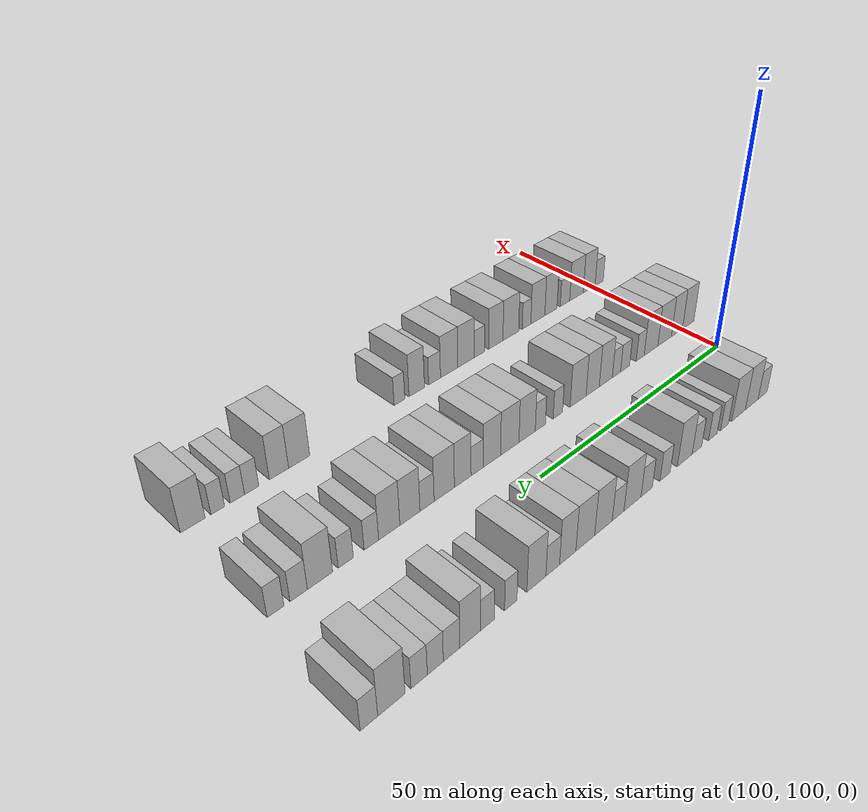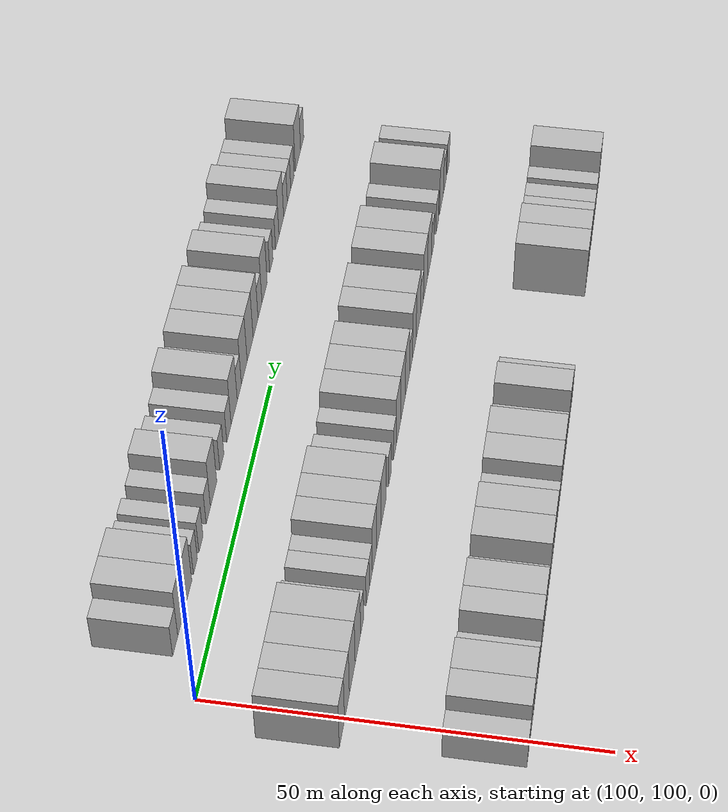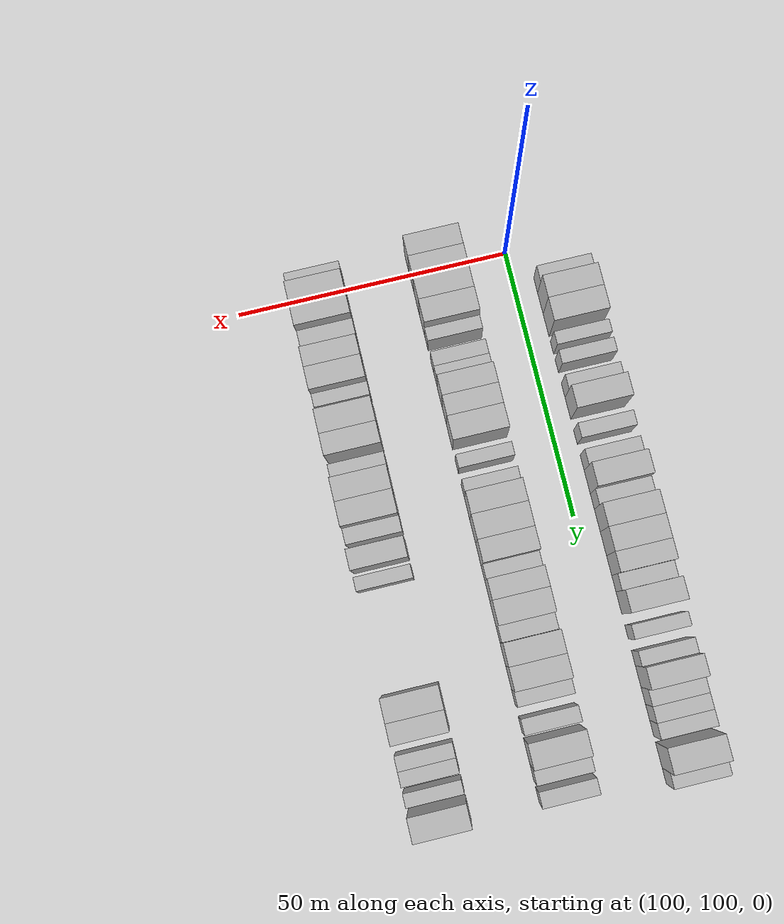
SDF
<sdf version="1.6">
 <world name="default">
  <model name="building_713">
   <static>1</static>
   <pose>91.0000 107.1444 0 0.000000 0.000000 0.000000</pose>
   <link name="link">
    <pose>0 0 3.00 0 0 0</pose>
    <collision name="collision"><geometry><box><size>10.0000 2.9722 6.0000</size></box></geometry></collision>
    <visual name="visual">
     <cast_shadows>0</cast_shadows>
     <geometry><box><size>10.0000 2.9722 6.0000</size></box></geometry>
     <material>
      <script>
       <uri>model://HANNAS_wall/materials/scripts</uri>
       <uri>model://HANNAS_wall/materials/textures</uri>
       <name>vrc/HANNAS_wall</name>
      </script>
     </material>
    </visual>
   </link>
  </model>
  <model name="building_714">
   <static>1</static>
   <pose>91.0000 110.6781 0 0.000000 0.000000 0.000000</pose>
   <link name="link">
    <pose>0 0 4.50 0 0 0</pose>
    <collision name="collision"><geometry><box><size>10.0000 4.0952 9.0000</size></box></geometry></collision>
    <visual name="visual">
     <cast_shadows>0</cast_shadows>
     <geometry><box><size>10.0000 4.0952 9.0000</size></box></geometry>
     <material>
      <script>
       <uri>model://HANNAS_wall/materials/scripts</uri>
       <uri>model://HANNAS_wall/materials/textures</uri>
       <name>vrc/HANNAS_wall</name>
      </script>
     </material>
    </visual>
   </link>
  </model>
  <model name="building_715">
   <static>1</static>
   <pose>91.0000 114.8753 0 0.000000 0.000000 0.000000</pose>
   <link name="link">
    <pose>0 0 4.50 0 0 0</pose>
    <collision name="collision"><geometry><box><size>10.0000 4.2992 9.0000</size></box></geometry></collision>
    <visual name="visual">
     <cast_shadows>0</cast_shadows>
     <geometry><box><size>10.0000 4.2992 9.0000</size></box></geometry>
     <material>
      <script>
       <uri>model://HANNAS_wall/materials/scripts</uri>
       <uri>model://HANNAS_wall/materials/textures</uri>
       <name>vrc/HANNAS_wall</name>
      </script>
     </material>
    </visual>
   </link>
  </model>
  <model name="building_716">
   <static>1</static>
   <pose>91.0000 119.2325 0 0.000000 0.000000 0.000000</pose>
   <link name="link">
    <pose>0 0 3.00 0 0 0</pose>
    <collision name="collision"><geometry><box><size>10.0000 2.4152 6.0000</size></box></geometry></collision>
    <visual name="visual">
     <cast_shadows>0</cast_shadows>
     <geometry><box><size>10.0000 2.4152 6.0000</size></box></geometry>
     <material>
      <script>
       <uri>model://HANNAS_wall/materials/scripts</uri>
       <uri>model://HANNAS_wall/materials/textures</uri>
       <name>vrc/HANNAS_wall</name>
      </script>
     </material>
    </visual>
   </link>
  </model>
  <model name="building_717">
   <static>1</static>
   <pose>91.0000 122.7151 0 0.000000 0.000000 0.000000</pose>
   <link name="link">
    <pose>0 0 3.00 0 0 0</pose>
    <collision name="collision"><geometry><box><size>10.0000 2.5500 6.0000</size></box></geometry></collision>
    <visual name="visual">
     <cast_shadows>0</cast_shadows>
     <geometry><box><size>10.0000 2.5500 6.0000</size></box></geometry>
     <material>
      <script>
       <uri>model://HANNAS_wall/materials/scripts</uri>
       <uri>model://HANNAS_wall/materials/textures</uri>
       <name>vrc/HANNAS_wall</name>
      </script>
     </material>
    </visual>
   </link>
  </model>
  <model name="building_718">
   <static>1</static>
   <pose>91.0000 127.3580 0 0.000000 0.000000 0.000000</pose>
   <link name="link">
    <pose>0 0 3.00 0 0 0</pose>
    <collision name="collision"><geometry><box><size>10.0000 2.7358 6.0000</size></box></geometry></collision>
    <visual name="visual">
     <cast_shadows>0</cast_shadows>
     <geometry><box><size>10.0000 2.7358 6.0000</size></box></geometry>
     <material>
      <script>
       <uri>model://HANNAS_wall/materials/scripts</uri>
       <uri>model://HANNAS_wall/materials/textures</uri>
       <name>vrc/HANNAS_wall</name>
      </script>
     </material>
    </visual>
   </link>
  </model>
  <model name="building_719">
   <static>1</static>
   <pose>91.0000 130.7910 0 0.000000 0.000000 0.000000</pose>
   <link name="link">
    <pose>0 0 4.50 0 0 0</pose>
    <collision name="collision"><geometry><box><size>10.0000 4.1302 9.0000</size></box></geometry></collision>
    <visual name="visual">
     <cast_shadows>0</cast_shadows>
     <geometry><box><size>10.0000 4.1302 9.0000</size></box></geometry>
     <material>
      <script>
       <uri>model://HANNAS_wall/materials/scripts</uri>
       <uri>model://HANNAS_wall/materials/textures</uri>
       <name>vrc/HANNAS_wall</name>
      </script>
     </material>
    </visual>
   </link>
  </model>
  <model name="building_720">
   <static>1</static>
   <pose>91.0000 136.2133 0 0.000000 0.000000 0.000000</pose>
   <link name="link">
    <pose>0 0 3.00 0 0 0</pose>
    <collision name="collision"><geometry><box><size>10.0000 2.7144 6.0000</size></box></geometry></collision>
    <visual name="visual">
     <cast_shadows>0</cast_shadows>
     <geometry><box><size>10.0000 2.7144 6.0000</size></box></geometry>
     <material>
      <script>
       <uri>model://HANNAS_wall/materials/scripts</uri>
       <uri>model://HANNAS_wall/materials/textures</uri>
       <name>vrc/HANNAS_wall</name>
      </script>
     </material>
    </visual>
   </link>
  </model>
  <model name="building_721">
   <static>1</static>
   <pose>91.0000 141.0321 0 0.000000 0.000000 0.000000</pose>
   <link name="link">
    <pose>0 0 3.00 0 0 0</pose>
    <collision name="collision"><geometry><box><size>10.0000 2.9234 6.0000</size></box></geometry></collision>
    <visual name="visual">
     <cast_shadows>0</cast_shadows>
     <geometry><box><size>10.0000 2.9234 6.0000</size></box></geometry>
     <material>
      <script>
       <uri>model://HANNAS_wall/materials/scripts</uri>
       <uri>model://HANNAS_wall/materials/textures</uri>
       <name>vrc/HANNAS_wall</name>
      </script>
     </material>
    </visual>
   </link>
  </model>
  <model name="building_722">
   <static>1</static>
   <pose>91.0000 144.6314 0 0.000000 0.000000 0.000000</pose>
   <link name="link">
    <pose>0 0 4.50 0 0 0</pose>
    <collision name="collision"><geometry><box><size>10.0000 4.2752 9.0000</size></box></geometry></collision>
    <visual name="visual">
     <cast_shadows>0</cast_shadows>
     <geometry><box><size>10.0000 4.2752 9.0000</size></box></geometry>
     <material>
      <script>
       <uri>model://HANNAS_wall/materials/scripts</uri>
       <uri>model://HANNAS_wall/materials/textures</uri>
       <name>vrc/HANNAS_wall</name>
      </script>
     </material>
    </visual>
   </link>
  </model>
  <model name="building_723">
   <static>1</static>
   <pose>91.0000 148.2035 0 0.000000 0.000000 0.000000</pose>
   <link name="link">
    <pose>0 0 3.00 0 0 0</pose>
    <collision name="collision"><geometry><box><size>10.0000 2.8689 6.0000</size></box></geometry></collision>
    <visual name="visual">
     <cast_shadows>0</cast_shadows>
     <geometry><box><size>10.0000 2.8689 6.0000</size></box></geometry>
     <material>
      <script>
       <uri>model://HANNAS_wall/materials/scripts</uri>
       <uri>model://HANNAS_wall/materials/textures</uri>
       <name>vrc/HANNAS_wall</name>
      </script>
     </material>
    </visual>
   </link>
  </model>
  <model name="building_724">
   <static>1</static>
   <pose>91.0000 151.7212 0 0.000000 0.000000 0.000000</pose>
   <link name="link">
    <pose>0 0 4.50 0 0 0</pose>
    <collision name="collision"><geometry><box><size>10.0000 4.1665 9.0000</size></box></geometry></collision>
    <visual name="visual">
     <cast_shadows>0</cast_shadows>
     <geometry><box><size>10.0000 4.1665 9.0000</size></box></geometry>
     <material>
      <script>
       <uri>model://HANNAS_wall/materials/scripts</uri>
       <uri>model://HANNAS_wall/materials/textures</uri>
       <name>vrc/HANNAS_wall</name>
      </script>
     </material>
    </visual>
   </link>
  </model>
  <model name="building_725">
   <static>1</static>
   <pose>91.0000 155.9677 0 0.000000 0.000000 0.000000</pose>
   <link name="link">
    <pose>0 0 4.50 0 0 0</pose>
    <collision name="collision"><geometry><box><size>10.0000 4.3266 9.0000</size></box></geometry></collision>
    <visual name="visual">
     <cast_shadows>0</cast_shadows>
     <geometry><box><size>10.0000 4.3266 9.0000</size></box></geometry>
     <material>
      <script>
       <uri>model://HANNAS_wall/materials/scripts</uri>
       <uri>model://HANNAS_wall/materials/textures</uri>
       <name>vrc/HANNAS_wall</name>
      </script>
     </material>
    </visual>
   </link>
  </model>
  <model name="building_726">
   <static>1</static>
   <pose>91.0000 159.9417 0 0.000000 0.000000 0.000000</pose>
   <link name="link">
    <pose>0 0 4.50 0 0 0</pose>
    <collision name="collision"><geometry><box><size>10.0000 3.6215 9.0000</size></box></geometry></collision>
    <visual name="visual">
     <cast_shadows>0</cast_shadows>
     <geometry><box><size>10.0000 3.6215 9.0000</size></box></geometry>
     <material>
      <script>
       <uri>model://HANNAS_wall/materials/scripts</uri>
       <uri>model://HANNAS_wall/materials/textures</uri>
       <name>vrc/HANNAS_wall</name>
      </script>
     </material>
    </visual>
   </link>
  </model>
  <model name="building_727">
   <static>1</static>
   <pose>91.0000 163.2304 0 0.000000 0.000000 0.000000</pose>
   <link name="link">
    <pose>0 0 3.00 0 0 0</pose>
    <collision name="collision"><geometry><box><size>10.0000 2.9559 6.0000</size></box></geometry></collision>
    <visual name="visual">
     <cast_shadows>0</cast_shadows>
     <geometry><box><size>10.0000 2.9559 6.0000</size></box></geometry>
     <material>
      <script>
       <uri>model://HANNAS_wall/materials/scripts</uri>
       <uri>model://HANNAS_wall/materials/textures</uri>
       <name>vrc/HANNAS_wall</name>
      </script>
     </material>
    </visual>
   </link>
  </model>
  <model name="building_728">
   <static>1</static>
   <pose>91.0000 166.6928 0 0.000000 0.000000 0.000000</pose>
   <link name="link">
    <pose>0 0 4.50 0 0 0</pose>
    <collision name="collision"><geometry><box><size>10.0000 3.9690 9.0000</size></box></geometry></collision>
    <visual name="visual">
     <cast_shadows>0</cast_shadows>
     <geometry><box><size>10.0000 3.9690 9.0000</size></box></geometry>
     <material>
      <script>
       <uri>model://HANNAS_wall/materials/scripts</uri>
       <uri>model://HANNAS_wall/materials/textures</uri>
       <name>vrc/HANNAS_wall</name>
      </script>
     </material>
    </visual>
   </link>
  </model>
  <model name="building_729">
   <static>1</static>
   <pose>91.0000 171.9343 0 0.000000 0.000000 0.000000</pose>
   <link name="link">
    <pose>0 0 3.00 0 0 0</pose>
    <collision name="collision"><geometry><box><size>10.0000 2.5140 6.0000</size></box></geometry></collision>
    <visual name="visual">
     <cast_shadows>0</cast_shadows>
     <geometry><box><size>10.0000 2.5140 6.0000</size></box></geometry>
     <material>
      <script>
       <uri>model://HANNAS_wall/materials/scripts</uri>
       <uri>model://HANNAS_wall/materials/textures</uri>
       <name>vrc/HANNAS_wall</name>
      </script>
     </material>
    </visual>
   </link>
  </model>
  <model name="building_730">
   <static>1</static>
   <pose>91.0000 176.5387 0 0.000000 0.000000 0.000000</pose>
   <link name="link">
    <pose>0 0 3.00 0 0 0</pose>
    <collision name="collision"><geometry><box><size>10.0000 2.6949 6.0000</size></box></geometry></collision>
    <visual name="visual">
     <cast_shadows>0</cast_shadows>
     <geometry><box><size>10.0000 2.6949 6.0000</size></box></geometry>
     <material>
      <script>
       <uri>model://HANNAS_wall/materials/scripts</uri>
       <uri>model://HANNAS_wall/materials/textures</uri>
       <name>vrc/HANNAS_wall</name>
      </script>
     </material>
    </visual>
   </link>
  </model>
  <model name="building_731">
   <static>1</static>
   <pose>91.0000 179.7879 0 0.000000 0.000000 0.000000</pose>
   <link name="link">
    <pose>0 0 4.50 0 0 0</pose>
    <collision name="collision"><geometry><box><size>10.0000 3.8034 9.0000</size></box></geometry></collision>
    <visual name="visual">
     <cast_shadows>0</cast_shadows>
     <geometry><box><size>10.0000 3.8034 9.0000</size></box></geometry>
     <material>
      <script>
       <uri>model://HANNAS_wall/materials/scripts</uri>
       <uri>model://HANNAS_wall/materials/textures</uri>
       <name>vrc/HANNAS_wall</name>
      </script>
     </material>
    </visual>
   </link>
  </model>
  <model name="building_732">
   <static>1</static>
   <pose>91.0000 183.1834 0 0.000000 0.000000 0.000000</pose>
   <link name="link">
    <pose>0 0 3.00 0 0 0</pose>
    <collision name="collision"><geometry><box><size>10.0000 2.9877 6.0000</size></box></geometry></collision>
    <visual name="visual">
     <cast_shadows>0</cast_shadows>
     <geometry><box><size>10.0000 2.9877 6.0000</size></box></geometry>
     <material>
      <script>
       <uri>model://HANNAS_wall/materials/scripts</uri>
       <uri>model://HANNAS_wall/materials/textures</uri>
       <name>vrc/HANNAS_wall</name>
      </script>
     </material>
    </visual>
   </link>
  </model>
  <model name="building_733">
   <static>1</static>
   <pose>91.0000 186.0819 0 0.000000 0.000000 0.000000</pose>
   <link name="link">
    <pose>0 0 3.00 0 0 0</pose>
    <collision name="collision"><geometry><box><size>10.0000 2.8093 6.0000</size></box></geometry></collision>
    <visual name="visual">
     <cast_shadows>0</cast_shadows>
     <geometry><box><size>10.0000 2.8093 6.0000</size></box></geometry>
     <material>
      <script>
       <uri>model://HANNAS_wall/materials/scripts</uri>
       <uri>model://HANNAS_wall/materials/textures</uri>
       <name>vrc/HANNAS_wall</name>
      </script>
     </material>
    </visual>
   </link>
  </model>
  <model name="building_734">
   <static>1</static>
   <pose>91.0000 188.8910 0 0.000000 0.000000 0.000000</pose>
   <link name="link">
    <pose>0 0 3.00 0 0 0</pose>
    <collision name="collision"><geometry><box><size>10.0000 2.8089 6.0000</size></box></geometry></collision>
    <visual name="visual">
     <cast_shadows>0</cast_shadows>
     <geometry><box><size>10.0000 2.8089 6.0000</size></box></geometry>
     <material>
      <script>
       <uri>model://HANNAS_wall/materials/scripts</uri>
       <uri>model://HANNAS_wall/materials/textures</uri>
       <name>vrc/HANNAS_wall</name>
      </script>
     </material>
    </visual>
   </link>
  </model>
  <model name="building_735">
   <static>1</static>
   <pose>91.0000 193.5280 0 0.000000 0.000000 0.000000</pose>
   <link name="link">
    <pose>0 0 4.50 0 0 0</pose>
    <collision name="collision"><geometry><box><size>10.0000 4.4653 9.0000</size></box></geometry></collision>
    <visual name="visual">
     <cast_shadows>0</cast_shadows>
     <geometry><box><size>10.0000 4.4653 9.0000</size></box></geometry>
     <material>
      <script>
       <uri>model://HANNAS_wall/materials/scripts</uri>
       <uri>model://HANNAS_wall/materials/textures</uri>
       <name>vrc/HANNAS_wall</name>
      </script>
     </material>
    </visual>
   </link>
  </model>
  <model name="building_736">
   <static>1</static>
   <pose>91.0000 197.1541 0 0.000000 0.000000 0.000000</pose>
   <link name="link">
    <pose>0 0 3.00 0 0 0</pose>
    <collision name="collision"><geometry><box><size>10.0000 2.7868 6.0000</size></box></geometry></collision>
    <visual name="visual">
     <cast_shadows>0</cast_shadows>
     <geometry><box><size>10.0000 2.7868 6.0000</size></box></geometry>
     <material>
      <script>
       <uri>model://HANNAS_wall/materials/scripts</uri>
       <uri>model://HANNAS_wall/materials/textures</uri>
       <name>vrc/HANNAS_wall</name>
      </script>
     </material>
    </visual>
   </link>
  </model>
  <model name="building_894">
   <static>1</static>
   <pose>113.0000 97.8054 0 0.000000 0.000000 0.000000</pose>
   <link name="link">
    <pose>0 0 4.50 0 0 0</pose>
    <collision name="collision"><geometry><box><size>10.0000 3.8227 9.0000</size></box></geometry></collision>
    <visual name="visual">
     <cast_shadows>0</cast_shadows>
     <geometry><box><size>10.0000 3.8227 9.0000</size></box></geometry>
     <material>
      <script>
       <uri>model://HANNAS_wall/materials/scripts</uri>
       <uri>model://HANNAS_wall/materials/textures</uri>
       <name>vrc/HANNAS_wall</name>
      </script>
     </material>
    </visual>
   </link>
  </model>
  <model name="building_895">
   <static>1</static>
   <pose>113.0000 101.5476 0 0.000000 0.000000 0.000000</pose>
   <link name="link">
    <pose>0 0 4.50 0 0 0</pose>
    <collision name="collision"><geometry><box><size>10.0000 3.6617 9.0000</size></box></geometry></collision>
    <visual name="visual">
     <cast_shadows>0</cast_shadows>
     <geometry><box><size>10.0000 3.6617 9.0000</size></box></geometry>
     <material>
      <script>
       <uri>model://HANNAS_wall/materials/scripts</uri>
       <uri>model://HANNAS_wall/materials/textures</uri>
       <name>vrc/HANNAS_wall</name>
      </script>
     </material>
    </visual>
   </link>
  </model>
  <model name="building_896">
   <static>1</static>
   <pose>113.0000 105.5621 0 0.000000 0.000000 0.000000</pose>
   <link name="link">
    <pose>0 0 4.50 0 0 0</pose>
    <collision name="collision"><geometry><box><size>10.0000 4.3675 9.0000</size></box></geometry></collision>
    <visual name="visual">
     <cast_shadows>0</cast_shadows>
     <geometry><box><size>10.0000 4.3675 9.0000</size></box></geometry>
     <material>
      <script>
       <uri>model://HANNAS_wall/materials/scripts</uri>
       <uri>model://HANNAS_wall/materials/textures</uri>
       <name>vrc/HANNAS_wall</name>
      </script>
     </material>
    </visual>
   </link>
  </model>
  <model name="building_897">
   <static>1</static>
   <pose>113.0000 109.8780 0 0.000000 0.000000 0.000000</pose>
   <link name="link">
    <pose>0 0 4.50 0 0 0</pose>
    <collision name="collision"><geometry><box><size>10.0000 4.2643 9.0000</size></box></geometry></collision>
    <visual name="visual">
     <cast_shadows>0</cast_shadows>
     <geometry><box><size>10.0000 4.2643 9.0000</size></box></geometry>
     <material>
      <script>
       <uri>model://HANNAS_wall/materials/scripts</uri>
       <uri>model://HANNAS_wall/materials/textures</uri>
       <name>vrc/HANNAS_wall</name>
      </script>
     </material>
    </visual>
   </link>
  </model>
  <model name="building_898">
   <static>1</static>
   <pose>113.0000 113.2358 0 0.000000 0.000000 0.000000</pose>
   <link name="link">
    <pose>0 0 3.00 0 0 0</pose>
    <collision name="collision"><geometry><box><size>10.0000 2.4512 6.0000</size></box></geometry></collision>
    <visual name="visual">
     <cast_shadows>0</cast_shadows>
     <geometry><box><size>10.0000 2.4512 6.0000</size></box></geometry>
     <material>
      <script>
       <uri>model://HANNAS_wall/materials/scripts</uri>
       <uri>model://HANNAS_wall/materials/textures</uri>
       <name>vrc/HANNAS_wall</name>
      </script>
     </material>
    </visual>
   </link>
  </model>
  <model name="building_899">
   <static>1</static>
   <pose>113.0000 117.7974 0 0.000000 0.000000 0.000000</pose>
   <link name="link">
    <pose>0 0 3.00 0 0 0</pose>
    <collision name="collision"><geometry><box><size>10.0000 2.6721 6.0000</size></box></geometry></collision>
    <visual name="visual">
     <cast_shadows>0</cast_shadows>
     <geometry><box><size>10.0000 2.6721 6.0000</size></box></geometry>
     <material>
      <script>
       <uri>model://HANNAS_wall/materials/scripts</uri>
       <uri>model://HANNAS_wall/materials/textures</uri>
       <name>vrc/HANNAS_wall</name>
      </script>
     </material>
    </visual>
   </link>
  </model>
  <model name="building_900">
   <static>1</static>
   <pose>113.0000 120.3382 0 0.000000 0.000000 0.000000</pose>
   <link name="link">
    <pose>0 0 3.00 0 0 0</pose>
    <collision name="collision"><geometry><box><size>10.0000 2.4095 6.0000</size></box></geometry></collision>
    <visual name="visual">
     <cast_shadows>0</cast_shadows>
     <geometry><box><size>10.0000 2.4095 6.0000</size></box></geometry>
     <material>
      <script>
       <uri>model://HANNAS_wall/materials/scripts</uri>
       <uri>model://HANNAS_wall/materials/textures</uri>
       <name>vrc/HANNAS_wall</name>
      </script>
     </material>
    </visual>
   </link>
  </model>
  <model name="building_901">
   <static>1</static>
   <pose>113.0000 123.4072 0 0.000000 0.000000 0.000000</pose>
   <link name="link">
    <pose>0 0 4.50 0 0 0</pose>
    <collision name="collision"><geometry><box><size>10.0000 3.7285 9.0000</size></box></geometry></collision>
    <visual name="visual">
     <cast_shadows>0</cast_shadows>
     <geometry><box><size>10.0000 3.7285 9.0000</size></box></geometry>
     <material>
      <script>
       <uri>model://HANNAS_wall/materials/scripts</uri>
       <uri>model://HANNAS_wall/materials/textures</uri>
       <name>vrc/HANNAS_wall</name>
      </script>
     </material>
    </visual>
   </link>
  </model>
  <model name="building_902">
   <static>1</static>
   <pose>113.0000 127.1139 0 0.000000 0.000000 0.000000</pose>
   <link name="link">
    <pose>0 0 4.50 0 0 0</pose>
    <collision name="collision"><geometry><box><size>10.0000 3.6850 9.0000</size></box></geometry></collision>
    <visual name="visual">
     <cast_shadows>0</cast_shadows>
     <geometry><box><size>10.0000 3.6850 9.0000</size></box></geometry>
     <material>
      <script>
       <uri>model://HANNAS_wall/materials/scripts</uri>
       <uri>model://HANNAS_wall/materials/textures</uri>
       <name>vrc/HANNAS_wall</name>
      </script>
     </material>
    </visual>
   </link>
  </model>
  <model name="building_903">
   <static>1</static>
   <pose>113.0000 131.1234 0 0.000000 0.000000 0.000000</pose>
   <link name="link">
    <pose>0 0 4.50 0 0 0</pose>
    <collision name="collision"><geometry><box><size>10.0000 4.3339 9.0000</size></box></geometry></collision>
    <visual name="visual">
     <cast_shadows>0</cast_shadows>
     <geometry><box><size>10.0000 4.3339 9.0000</size></box></geometry>
     <material>
      <script>
       <uri>model://HANNAS_wall/materials/scripts</uri>
       <uri>model://HANNAS_wall/materials/textures</uri>
       <name>vrc/HANNAS_wall</name>
      </script>
     </material>
    </visual>
   </link>
  </model>
  <model name="building_904">
   <static>1</static>
   <pose>113.0000 136.5149 0 0.000000 0.000000 0.000000</pose>
   <link name="link">
    <pose>0 0 3.00 0 0 0</pose>
    <collision name="collision"><geometry><box><size>10.0000 2.4490 6.0000</size></box></geometry></collision>
    <visual name="visual">
     <cast_shadows>0</cast_shadows>
     <geometry><box><size>10.0000 2.4490 6.0000</size></box></geometry>
     <material>
      <script>
       <uri>model://HANNAS_wall/materials/scripts</uri>
       <uri>model://HANNAS_wall/materials/textures</uri>
       <name>vrc/HANNAS_wall</name>
      </script>
     </material>
    </visual>
   </link>
  </model>
  <model name="building_905">
   <static>1</static>
   <pose>113.0000 141.0198 0 0.000000 0.000000 0.000000</pose>
   <link name="link">
    <pose>0 0 3.00 0 0 0</pose>
    <collision name="collision"><geometry><box><size>10.0000 2.5608 6.0000</size></box></geometry></collision>
    <visual name="visual">
     <cast_shadows>0</cast_shadows>
     <geometry><box><size>10.0000 2.5608 6.0000</size></box></geometry>
     <material>
      <script>
       <uri>model://HANNAS_wall/materials/scripts</uri>
       <uri>model://HANNAS_wall/materials/textures</uri>
       <name>vrc/HANNAS_wall</name>
      </script>
     </material>
    </visual>
   </link>
  </model>
  <model name="building_906">
   <static>1</static>
   <pose>113.0000 144.3171 0 0.000000 0.000000 0.000000</pose>
   <link name="link">
    <pose>0 0 4.50 0 0 0</pose>
    <collision name="collision"><geometry><box><size>10.0000 4.0337 9.0000</size></box></geometry></collision>
    <visual name="visual">
     <cast_shadows>0</cast_shadows>
     <geometry><box><size>10.0000 4.0337 9.0000</size></box></geometry>
     <material>
      <script>
       <uri>model://HANNAS_wall/materials/scripts</uri>
       <uri>model://HANNAS_wall/materials/textures</uri>
       <name>vrc/HANNAS_wall</name>
      </script>
     </material>
    </visual>
   </link>
  </model>
  <model name="building_907">
   <static>1</static>
   <pose>113.0000 148.5348 0 0.000000 0.000000 0.000000</pose>
   <link name="link">
    <pose>0 0 4.50 0 0 0</pose>
    <collision name="collision"><geometry><box><size>10.0000 4.4017 9.0000</size></box></geometry></collision>
    <visual name="visual">
     <cast_shadows>0</cast_shadows>
     <geometry><box><size>10.0000 4.4017 9.0000</size></box></geometry>
     <material>
      <script>
       <uri>model://HANNAS_wall/materials/scripts</uri>
       <uri>model://HANNAS_wall/materials/textures</uri>
       <name>vrc/HANNAS_wall</name>
      </script>
     </material>
    </visual>
   </link>
  </model>
  <model name="building_908">
   <static>1</static>
   <pose>113.0000 152.7584 0 0.000000 0.000000 0.000000</pose>
   <link name="link">
    <pose>0 0 4.50 0 0 0</pose>
    <collision name="collision"><geometry><box><size>10.0000 4.0455 9.0000</size></box></geometry></collision>
    <visual name="visual">
     <cast_shadows>0</cast_shadows>
     <geometry><box><size>10.0000 4.0455 9.0000</size></box></geometry>
     <material>
      <script>
       <uri>model://HANNAS_wall/materials/scripts</uri>
       <uri>model://HANNAS_wall/materials/textures</uri>
       <name>vrc/HANNAS_wall</name>
      </script>
     </material>
    </visual>
   </link>
  </model>
  <model name="building_909">
   <static>1</static>
   <pose>113.0000 156.1469 0 0.000000 0.000000 0.000000</pose>
   <link name="link">
    <pose>0 0 3.00 0 0 0</pose>
    <collision name="collision"><geometry><box><size>10.0000 2.7315 6.0000</size></box></geometry></collision>
    <visual name="visual">
     <cast_shadows>0</cast_shadows>
     <geometry><box><size>10.0000 2.7315 6.0000</size></box></geometry>
     <material>
      <script>
       <uri>model://HANNAS_wall/materials/scripts</uri>
       <uri>model://HANNAS_wall/materials/textures</uri>
       <name>vrc/HANNAS_wall</name>
      </script>
     </material>
    </visual>
   </link>
  </model>
  <model name="building_910">
   <static>1</static>
   <pose>113.0000 159.3513 0 0.000000 0.000000 0.000000</pose>
   <link name="link">
    <pose>0 0 4.50 0 0 0</pose>
    <collision name="collision"><geometry><box><size>10.0000 3.6773 9.0000</size></box></geometry></collision>
    <visual name="visual">
     <cast_shadows>0</cast_shadows>
     <geometry><box><size>10.0000 3.6773 9.0000</size></box></geometry>
     <material>
      <script>
       <uri>model://HANNAS_wall/materials/scripts</uri>
       <uri>model://HANNAS_wall/materials/textures</uri>
       <name>vrc/HANNAS_wall</name>
      </script>
     </material>
    </visual>
   </link>
  </model>
  <model name="building_911">
   <static>1</static>
   <pose>113.0000 163.3631 0 0.000000 0.000000 0.000000</pose>
   <link name="link">
    <pose>0 0 4.50 0 0 0</pose>
    <collision name="collision"><geometry><box><size>10.0000 4.3463 9.0000</size></box></geometry></collision>
    <visual name="visual">
     <cast_shadows>0</cast_shadows>
     <geometry><box><size>10.0000 4.3463 9.0000</size></box></geometry>
     <material>
      <script>
       <uri>model://HANNAS_wall/materials/scripts</uri>
       <uri>model://HANNAS_wall/materials/textures</uri>
       <name>vrc/HANNAS_wall</name>
      </script>
     </material>
    </visual>
   </link>
  </model>
  <model name="building_912">
   <static>1</static>
   <pose>113.0000 167.0050 0 0.000000 0.000000 0.000000</pose>
   <link name="link">
    <pose>0 0 3.00 0 0 0</pose>
    <collision name="collision"><geometry><box><size>10.0000 2.9374 6.0000</size></box></geometry></collision>
    <visual name="visual">
     <cast_shadows>0</cast_shadows>
     <geometry><box><size>10.0000 2.9374 6.0000</size></box></geometry>
     <material>
      <script>
       <uri>model://HANNAS_wall/materials/scripts</uri>
       <uri>model://HANNAS_wall/materials/textures</uri>
       <name>vrc/HANNAS_wall</name>
      </script>
     </material>
    </visual>
   </link>
  </model>
  <model name="building_913">
   <static>1</static>
   <pose>113.0000 170.5104 0 0.000000 0.000000 0.000000</pose>
   <link name="link">
    <pose>0 0 4.50 0 0 0</pose>
    <collision name="collision"><geometry><box><size>10.0000 4.0736 9.0000</size></box></geometry></collision>
    <visual name="visual">
     <cast_shadows>0</cast_shadows>
     <geometry><box><size>10.0000 4.0736 9.0000</size></box></geometry>
     <material>
      <script>
       <uri>model://HANNAS_wall/materials/scripts</uri>
       <uri>model://HANNAS_wall/materials/textures</uri>
       <name>vrc/HANNAS_wall</name>
      </script>
     </material>
    </visual>
   </link>
  </model>
  <model name="building_914">
   <static>1</static>
   <pose>113.0000 174.6281 0 0.000000 0.000000 0.000000</pose>
   <link name="link">
    <pose>0 0 4.50 0 0 0</pose>
    <collision name="collision"><geometry><box><size>10.0000 4.1617 9.0000</size></box></geometry></collision>
    <visual name="visual">
     <cast_shadows>0</cast_shadows>
     <geometry><box><size>10.0000 4.1617 9.0000</size></box></geometry>
     <material>
      <script>
       <uri>model://HANNAS_wall/materials/scripts</uri>
       <uri>model://HANNAS_wall/materials/textures</uri>
       <name>vrc/HANNAS_wall</name>
      </script>
     </material>
    </visual>
   </link>
  </model>
  <model name="building_915">
   <static>1</static>
   <pose>113.0000 178.0976 0 0.000000 0.000000 0.000000</pose>
   <link name="link">
    <pose>0 0 3.00 0 0 0</pose>
    <collision name="collision"><geometry><box><size>10.0000 2.7772 6.0000</size></box></geometry></collision>
    <visual name="visual">
     <cast_shadows>0</cast_shadows>
     <geometry><box><size>10.0000 2.7772 6.0000</size></box></geometry>
     <material>
      <script>
       <uri>model://HANNAS_wall/materials/scripts</uri>
       <uri>model://HANNAS_wall/materials/textures</uri>
       <name>vrc/HANNAS_wall</name>
      </script>
     </material>
    </visual>
   </link>
  </model>
  <model name="building_916">
   <static>1</static>
   <pose>113.0000 182.8753 0 0.000000 0.000000 0.000000</pose>
   <link name="link">
    <pose>0 0 3.00 0 0 0</pose>
    <collision name="collision"><geometry><box><size>10.0000 2.7781 6.0000</size></box></geometry></collision>
    <visual name="visual">
     <cast_shadows>0</cast_shadows>
     <geometry><box><size>10.0000 2.7781 6.0000</size></box></geometry>
     <material>
      <script>
       <uri>model://HANNAS_wall/materials/scripts</uri>
       <uri>model://HANNAS_wall/materials/textures</uri>
       <name>vrc/HANNAS_wall</name>
      </script>
     </material>
    </visual>
   </link>
  </model>
  <model name="building_917">
   <static>1</static>
   <pose>113.0000 187.4849 0 0.000000 0.000000 0.000000</pose>
   <link name="link">
    <pose>0 0 4.50 0 0 0</pose>
    <collision name="collision"><geometry><box><size>10.0000 4.4413 9.0000</size></box></geometry></collision>
    <visual name="visual">
     <cast_shadows>0</cast_shadows>
     <geometry><box><size>10.0000 4.4413 9.0000</size></box></geometry>
     <material>
      <script>
       <uri>model://HANNAS_wall/materials/scripts</uri>
       <uri>model://HANNAS_wall/materials/textures</uri>
       <name>vrc/HANNAS_wall</name>
      </script>
     </material>
    </visual>
   </link>
  </model>
  <model name="building_918">
   <static>1</static>
   <pose>113.0000 191.1953 0 0.000000 0.000000 0.000000</pose>
   <link name="link">
    <pose>0 0 3.00 0 0 0</pose>
    <collision name="collision"><geometry><box><size>10.0000 2.9794 6.0000</size></box></geometry></collision>
    <visual name="visual">
     <cast_shadows>0</cast_shadows>
     <geometry><box><size>10.0000 2.9794 6.0000</size></box></geometry>
     <material>
      <script>
       <uri>model://HANNAS_wall/materials/scripts</uri>
       <uri>model://HANNAS_wall/materials/textures</uri>
       <name>vrc/HANNAS_wall</name>
      </script>
     </material>
    </visual>
   </link>
  </model>
  <model name="building_919">
   <static>1</static>
   <pose>113.0000 195.0736 0 0.000000 0.000000 0.000000</pose>
   <link name="link">
    <pose>0 0 3.00 0 0 0</pose>
    <collision name="collision"><geometry><box><size>10.0000 2.7773 6.0000</size></box></geometry></collision>
    <visual name="visual">
     <cast_shadows>0</cast_shadows>
     <geometry><box><size>10.0000 2.7773 6.0000</size></box></geometry>
     <material>
      <script>
       <uri>model://HANNAS_wall/materials/scripts</uri>
       <uri>model://HANNAS_wall/materials/textures</uri>
       <name>vrc/HANNAS_wall</name>
      </script>
     </material>
    </visual>
   </link>
  </model>
  <model name="building_1078">
   <static>1</static>
   <pose>135.0000 97.8269 0 0.000000 0.000000 0.000000</pose>
   <link name="link">
    <pose>0 0 3.00 0 0 0</pose>
    <collision name="collision"><geometry><box><size>10.0000 2.6459 6.0000</size></box></geometry></collision>
    <visual name="visual">
     <cast_shadows>0</cast_shadows>
     <geometry><box><size>10.0000 2.6459 6.0000</size></box></geometry>
     <material>
      <script>
       <uri>model://HANNAS_wall/materials/scripts</uri>
       <uri>model://HANNAS_wall/materials/textures</uri>
       <name>vrc/HANNAS_wall</name>
      </script>
     </material>
    </visual>
   </link>
  </model>
  <model name="building_1079">
   <static>1</static>
   <pose>135.0000 101.0675 0 0.000000 0.000000 0.000000</pose>
   <link name="link">
    <pose>0 0 4.50 0 0 0</pose>
    <collision name="collision"><geometry><box><size>10.0000 3.8353 9.0000</size></box></geometry></collision>
    <visual name="visual">
     <cast_shadows>0</cast_shadows>
     <geometry><box><size>10.0000 3.8353 9.0000</size></box></geometry>
     <material>
      <script>
       <uri>model://HANNAS_wall/materials/scripts</uri>
       <uri>model://HANNAS_wall/materials/textures</uri>
       <name>vrc/HANNAS_wall</name>
      </script>
     </material>
    </visual>
   </link>
  </model>
  <model name="building_1080">
   <static>1</static>
   <pose>135.0000 105.1352 0 0.000000 0.000000 0.000000</pose>
   <link name="link">
    <pose>0 0 4.50 0 0 0</pose>
    <collision name="collision"><geometry><box><size>10.0000 4.3003 9.0000</size></box></geometry></collision>
    <visual name="visual">
     <cast_shadows>0</cast_shadows>
     <geometry><box><size>10.0000 4.3003 9.0000</size></box></geometry>
     <material>
      <script>
       <uri>model://HANNAS_wall/materials/scripts</uri>
       <uri>model://HANNAS_wall/materials/textures</uri>
       <name>vrc/HANNAS_wall</name>
      </script>
     </material>
    </visual>
   </link>
  </model>
  <model name="building_1081">
   <static>1</static>
   <pose>135.0000 108.7363 0 0.000000 0.000000 0.000000</pose>
   <link name="link">
    <pose>0 0 3.00 0 0 0</pose>
    <collision name="collision"><geometry><box><size>10.0000 2.9020 6.0000</size></box></geometry></collision>
    <visual name="visual">
     <cast_shadows>0</cast_shadows>
     <geometry><box><size>10.0000 2.9020 6.0000</size></box></geometry>
     <material>
      <script>
       <uri>model://HANNAS_wall/materials/scripts</uri>
       <uri>model://HANNAS_wall/materials/textures</uri>
       <name>vrc/HANNAS_wall</name>
      </script>
     </material>
    </visual>
   </link>
  </model>
  <model name="building_1082">
   <static>1</static>
   <pose>135.0000 113.0136 0 0.000000 0.000000 0.000000</pose>
   <link name="link">
    <pose>0 0 4.50 0 0 0</pose>
    <collision name="collision"><geometry><box><size>10.0000 3.6525 9.0000</size></box></geometry></collision>
    <visual name="visual">
     <cast_shadows>0</cast_shadows>
     <geometry><box><size>10.0000 3.6525 9.0000</size></box></geometry>
     <material>
      <script>
       <uri>model://HANNAS_wall/materials/scripts</uri>
       <uri>model://HANNAS_wall/materials/textures</uri>
       <name>vrc/HANNAS_wall</name>
      </script>
     </material>
    </visual>
   </link>
  </model>
  <model name="building_1083">
   <static>1</static>
   <pose>135.0000 116.9005 0 0.000000 0.000000 0.000000</pose>
   <link name="link">
    <pose>0 0 4.50 0 0 0</pose>
    <collision name="collision"><geometry><box><size>10.0000 4.1213 9.0000</size></box></geometry></collision>
    <visual name="visual">
     <cast_shadows>0</cast_shadows>
     <geometry><box><size>10.0000 4.1213 9.0000</size></box></geometry>
     <material>
      <script>
       <uri>model://HANNAS_wall/materials/scripts</uri>
       <uri>model://HANNAS_wall/materials/textures</uri>
       <name>vrc/HANNAS_wall</name>
      </script>
     </material>
    </visual>
   </link>
  </model>
  <model name="building_1084">
   <static>1</static>
   <pose>135.0000 120.1991 0 0.000000 0.000000 0.000000</pose>
   <link name="link">
    <pose>0 0 3.00 0 0 0</pose>
    <collision name="collision"><geometry><box><size>10.0000 2.4758 6.0000</size></box></geometry></collision>
    <visual name="visual">
     <cast_shadows>0</cast_shadows>
     <geometry><box><size>10.0000 2.4758 6.0000</size></box></geometry>
     <material>
      <script>
       <uri>model://HANNAS_wall/materials/scripts</uri>
       <uri>model://HANNAS_wall/materials/textures</uri>
       <name>vrc/HANNAS_wall</name>
      </script>
     </material>
    </visual>
   </link>
  </model>
  <model name="building_1085">
   <static>1</static>
   <pose>135.0000 124.6421 0 0.000000 0.000000 0.000000</pose>
   <link name="link">
    <pose>0 0 4.50 0 0 0</pose>
    <collision name="collision"><geometry><box><size>10.0000 4.4101 9.0000</size></box></geometry></collision>
    <visual name="visual">
     <cast_shadows>0</cast_shadows>
     <geometry><box><size>10.0000 4.4101 9.0000</size></box></geometry>
     <material>
      <script>
       <uri>model://HANNAS_wall/materials/scripts</uri>
       <uri>model://HANNAS_wall/materials/textures</uri>
       <name>vrc/HANNAS_wall</name>
      </script>
     </material>
    </visual>
   </link>
  </model>
  <model name="building_1086">
   <static>1</static>
   <pose>135.0000 128.8061 0 0.000000 0.000000 0.000000</pose>
   <link name="link">
    <pose>0 0 4.50 0 0 0</pose>
    <collision name="collision"><geometry><box><size>10.0000 3.9179 9.0000</size></box></geometry></collision>
    <visual name="visual">
     <cast_shadows>0</cast_shadows>
     <geometry><box><size>10.0000 3.9179 9.0000</size></box></geometry>
     <material>
      <script>
       <uri>model://HANNAS_wall/materials/scripts</uri>
       <uri>model://HANNAS_wall/materials/textures</uri>
       <name>vrc/HANNAS_wall</name>
      </script>
     </material>
    </visual>
   </link>
  </model>
  <model name="building_1087">
   <static>1</static>
   <pose>135.0000 133.1822 0 0.000000 0.000000 0.000000</pose>
   <link name="link">
    <pose>0 0 3.00 0 0 0</pose>
    <collision name="collision"><geometry><box><size>10.0000 2.8343 6.0000</size></box></geometry></collision>
    <visual name="visual">
     <cast_shadows>0</cast_shadows>
     <geometry><box><size>10.0000 2.8343 6.0000</size></box></geometry>
     <material>
      <script>
       <uri>model://HANNAS_wall/materials/scripts</uri>
       <uri>model://HANNAS_wall/materials/textures</uri>
       <name>vrc/HANNAS_wall</name>
      </script>
     </material>
    </visual>
   </link>
  </model>
  <model name="building_1088">
   <static>1</static>
   <pose>135.0000 136.7301 0 0.000000 0.000000 0.000000</pose>
   <link name="link">
    <pose>0 0 4.50 0 0 0</pose>
    <collision name="collision"><geometry><box><size>10.0000 4.2615 9.0000</size></box></geometry></collision>
    <visual name="visual">
     <cast_shadows>0</cast_shadows>
     <geometry><box><size>10.0000 4.2615 9.0000</size></box></geometry>
     <material>
      <script>
       <uri>model://HANNAS_wall/materials/scripts</uri>
       <uri>model://HANNAS_wall/materials/textures</uri>
       <name>vrc/HANNAS_wall</name>
      </script>
     </material>
    </visual>
   </link>
  </model>
  <model name="building_1089">
   <static>1</static>
   <pose>135.0000 141.0337 0 0.000000 0.000000 0.000000</pose>
   <link name="link">
    <pose>0 0 4.50 0 0 0</pose>
    <collision name="collision"><geometry><box><size>10.0000 4.3457 9.0000</size></box></geometry></collision>
    <visual name="visual">
     <cast_shadows>0</cast_shadows>
     <geometry><box><size>10.0000 4.3457 9.0000</size></box></geometry>
     <material>
      <script>
       <uri>model://HANNAS_wall/materials/scripts</uri>
       <uri>model://HANNAS_wall/materials/textures</uri>
       <name>vrc/HANNAS_wall</name>
      </script>
     </material>
    </visual>
   </link>
  </model>
  <model name="building_1090">
   <static>1</static>
   <pose>135.0000 144.6627 0 0.000000 0.000000 0.000000</pose>
   <link name="link">
    <pose>0 0 3.00 0 0 0</pose>
    <collision name="collision"><geometry><box><size>10.0000 2.9124 6.0000</size></box></geometry></collision>
    <visual name="visual">
     <cast_shadows>0</cast_shadows>
     <geometry><box><size>10.0000 2.9124 6.0000</size></box></geometry>
     <material>
      <script>
       <uri>model://HANNAS_wall/materials/scripts</uri>
       <uri>model://HANNAS_wall/materials/textures</uri>
       <name>vrc/HANNAS_wall</name>
      </script>
     </material>
    </visual>
   </link>
  </model>
  <model name="building_1091">
   <static>1</static>
   <pose>135.0000 148.9706 0 0.000000 0.000000 0.000000</pose>
   <link name="link">
    <pose>0 0 4.50 0 0 0</pose>
    <collision name="collision"><geometry><box><size>10.0000 3.7032 9.0000</size></box></geometry></collision>
    <visual name="visual">
     <cast_shadows>0</cast_shadows>
     <geometry><box><size>10.0000 3.7032 9.0000</size></box></geometry>
     <material>
      <script>
       <uri>model://HANNAS_wall/materials/scripts</uri>
       <uri>model://HANNAS_wall/materials/textures</uri>
       <name>vrc/HANNAS_wall</name>
      </script>
     </material>
    </visual>
   </link>
  </model>
  <model name="building_1092">
   <static>1</static>
   <pose>135.0000 153.0577 0 0.000000 0.000000 0.000000</pose>
   <link name="link">
    <pose>0 0 3.00 0 0 0</pose>
    <collision name="collision"><geometry><box><size>10.0000 2.4711 6.0000</size></box></geometry></collision>
    <visual name="visual">
     <cast_shadows>0</cast_shadows>
     <geometry><box><size>10.0000 2.4711 6.0000</size></box></geometry>
     <material>
      <script>
       <uri>model://HANNAS_wall/materials/scripts</uri>
       <uri>model://HANNAS_wall/materials/textures</uri>
       <name>vrc/HANNAS_wall</name>
      </script>
     </material>
    </visual>
   </link>
  </model>
  <model name="building_1093">
   <static>1</static>
   <pose>135.0000 174.5877 0 0.000000 0.000000 0.000000</pose>
   <link name="link">
    <pose>0 0 4.50 0 0 0</pose>
    <collision name="collision"><geometry><box><size>10.0000 4.1963 9.0000</size></box></geometry></collision>
    <visual name="visual">
     <cast_shadows>0</cast_shadows>
     <geometry><box><size>10.0000 4.1963 9.0000</size></box></geometry>
     <material>
      <script>
       <uri>model://HANNAS_wall/materials/scripts</uri>
       <uri>model://HANNAS_wall/materials/textures</uri>
       <name>vrc/HANNAS_wall</name>
      </script>
     </material>
    </visual>
   </link>
  </model>
  <model name="building_1094">
   <static>1</static>
   <pose>135.0000 178.5448 0 0.000000 0.000000 0.000000</pose>
   <link name="link">
    <pose>0 0 4.50 0 0 0</pose>
    <collision name="collision"><geometry><box><size>10.0000 3.7178 9.0000</size></box></geometry></collision>
    <visual name="visual">
     <cast_shadows>0</cast_shadows>
     <geometry><box><size>10.0000 3.7178 9.0000</size></box></geometry>
     <material>
      <script>
       <uri>model://HANNAS_wall/materials/scripts</uri>
       <uri>model://HANNAS_wall/materials/textures</uri>
       <name>vrc/HANNAS_wall</name>
      </script>
     </material>
    </visual>
   </link>
  </model>
  <model name="building_1095">
   <static>1</static>
   <pose>135.0000 183.7258 0 0.000000 0.000000 0.000000</pose>
   <link name="link">
    <pose>0 0 3.00 0 0 0</pose>
    <collision name="collision"><geometry><box><size>10.0000 2.6443 6.0000</size></box></geometry></collision>
    <visual name="visual">
     <cast_shadows>0</cast_shadows>
     <geometry><box><size>10.0000 2.6443 6.0000</size></box></geometry>
     <material>
      <script>
       <uri>model://HANNAS_wall/materials/scripts</uri>
       <uri>model://HANNAS_wall/materials/textures</uri>
       <name>vrc/HANNAS_wall</name>
      </script>
     </material>
    </visual>
   </link>
  </model>
  <model name="building_1096">
   <static>1</static>
   <pose>135.0000 186.3556 0 0.000000 0.000000 0.000000</pose>
   <link name="link">
    <pose>0 0 3.00 0 0 0</pose>
    <collision name="collision"><geometry><box><size>10.0000 2.6153 6.0000</size></box></geometry></collision>
    <visual name="visual">
     <cast_shadows>0</cast_shadows>
     <geometry><box><size>10.0000 2.6153 6.0000</size></box></geometry>
     <material>
      <script>
       <uri>model://HANNAS_wall/materials/scripts</uri>
       <uri>model://HANNAS_wall/materials/textures</uri>
       <name>vrc/HANNAS_wall</name>
      </script>
     </material>
    </visual>
   </link>
  </model>
  <model name="building_1097">
   <static>1</static>
   <pose>135.0000 189.8782 0 0.000000 0.000000 0.000000</pose>
   <link name="link">
    <pose>0 0 3.00 0 0 0</pose>
    <collision name="collision"><geometry><box><size>10.0000 2.4299 6.0000</size></box></geometry></collision>
    <visual name="visual">
     <cast_shadows>0</cast_shadows>
     <geometry><box><size>10.0000 2.4299 6.0000</size></box></geometry>
     <material>
      <script>
       <uri>model://HANNAS_wall/materials/scripts</uri>
       <uri>model://HANNAS_wall/materials/textures</uri>
       <name>vrc/HANNAS_wall</name>
      </script>
     </material>
    </visual>
   </link>
  </model>
  <model name="building_1098">
   <static>1</static>
   <pose>135.0000 194.2227 0 0.000000 0.000000 0.000000</pose>
   <link name="link">
    <pose>0 0 4.50 0 0 0</pose>
    <collision name="collision"><geometry><box><size>10.0000 4.2591 9.0000</size></box></geometry></collision>
    <visual name="visual">
     <cast_shadows>0</cast_shadows>
     <geometry><box><size>10.0000 4.2591 9.0000</size></box></geometry>
     <material>
      <script>
       <uri>model://HANNAS_wall/materials/scripts</uri>
       <uri>model://HANNAS_wall/materials/textures</uri>
       <name>vrc/HANNAS_wall</name>
      </script>
     </material>
    </visual>
   </link>
  </model>
 </world>
</sdf>
